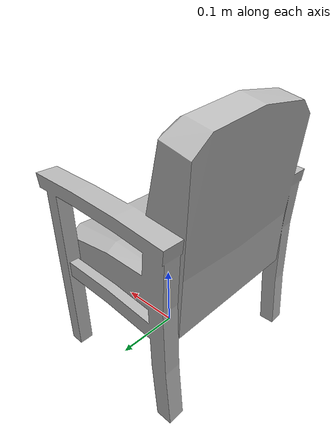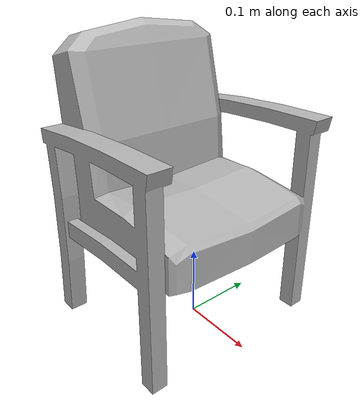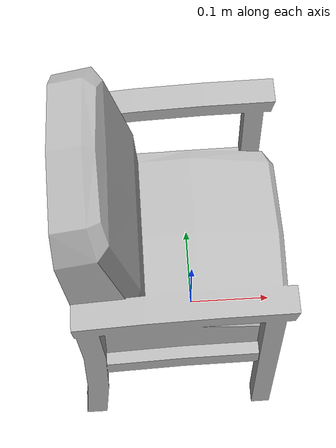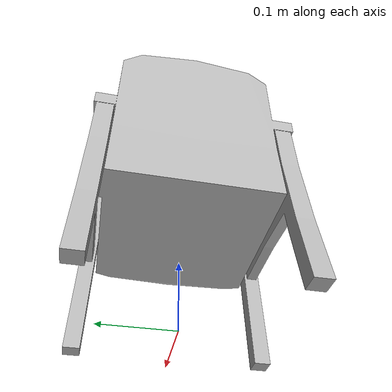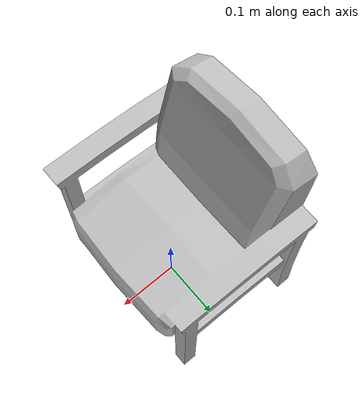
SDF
<?xml version="1.0"?>

<sdf version="1.6">
  <model name='Chair'>
    <static>true</static>
    <link name="body">
      <pose>0 0 0 0 0 1.5708</pose>

      <visual name="visual">
        <geometry>
          <mesh>
            <uri>model://Chair/meshes/Chair.obj</uri>
            <scale>0.004 0.004 0.004</scale>
          </mesh>
        </geometry>
      </visual>

      <collision name="collision">
        <geometry>
          <mesh>
            <uri>model://Chair/meshes/Chair.obj</uri>
            <scale>0.004 0.004 0.004</scale>
          </mesh>
        </geometry>
      </collision>

    </link>
  </model>
</sdf>
